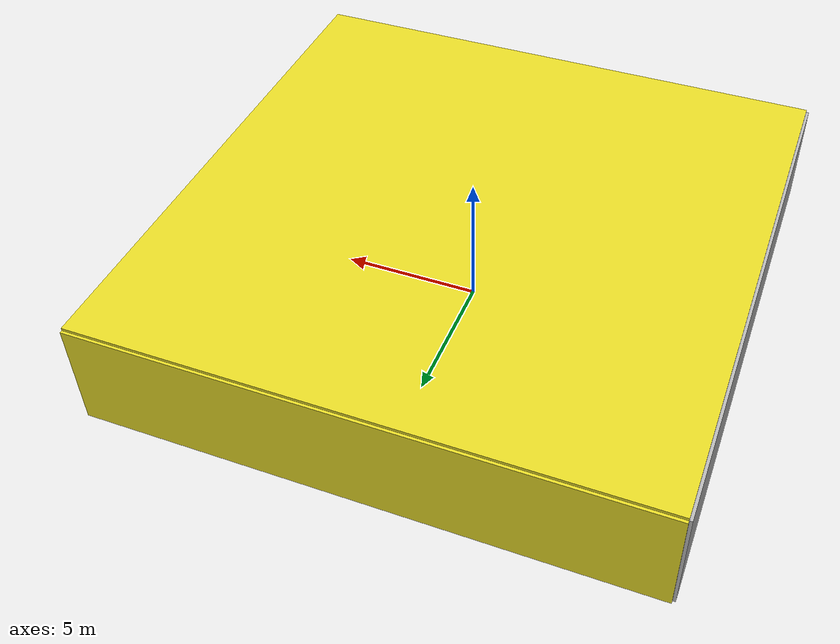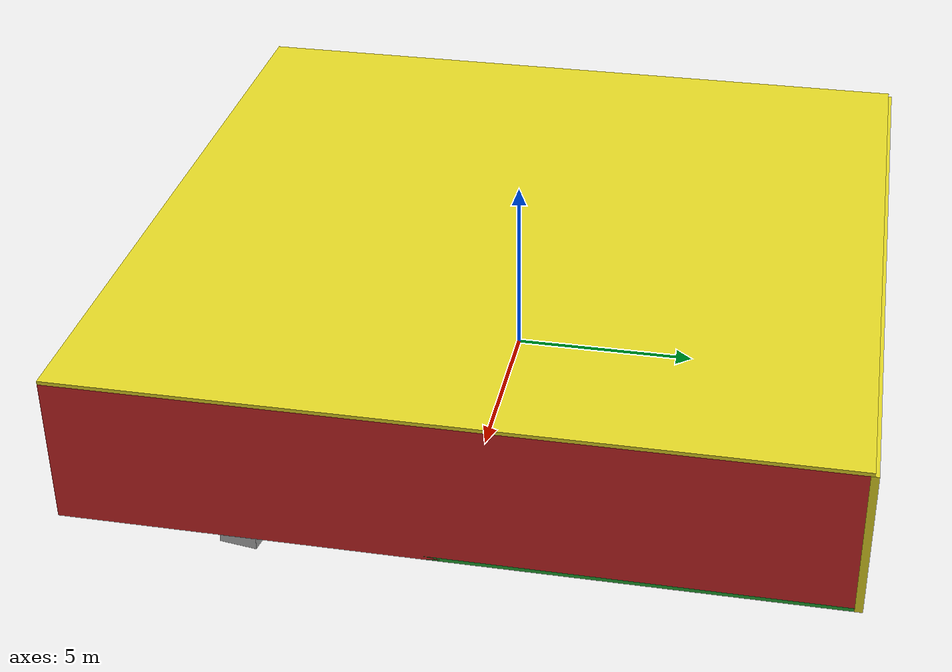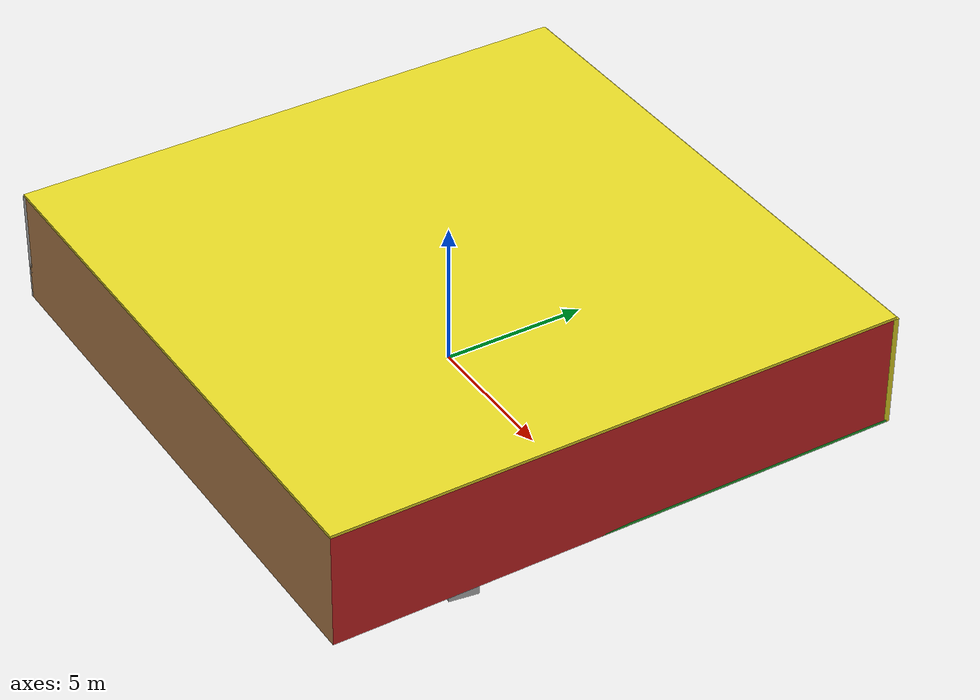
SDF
<sdf version="1.4">
 <world name="default">
  <physics type="ode">
   <max_step_size>0.001</max_step_size>
   <real_time_factor>1</real_time_factor>
   <real_time_update_rate>1000</real_time_update_rate>
   <gravity>0 0 -9.8</gravity>
  </physics>
  <scene><ambient>0.4 0.4 0.4 1</ambient><background>0.7 0.7 0.7 1</background><shadows>1</shadows></scene>
  <model name="Surrounding">
   <static>1</static>
   <link name="Ceiling">
    <collision name="Ceiling_Collision"><geometry><box><size>20 20 0.1</size></box></geometry></collision>
    <visual name="Ceiling_Visual">
     <geometry><box><size>20 20 0.1</size></box></geometry>
     <material>
      <script><uri>file://media/materials/scripts/gazebo.material</uri><name>Gazebo/YellowGlow</name></script>
     </material>
    </visual>
    <pose>0 0 4.05 0 0 0</pose>
   </link>
   <link name="Wall_South">
    <collision name="Wall_South_Collision">
     <geometry><box><size>20 0 4</size></box></geometry>
     <pose>0 0 2 0 -0 0</pose>
    </collision>
    <visual name="Wall_South_Visual">
     <pose>0 0 2 0 -0 0</pose>
     <geometry><box><size>20 0 4</size></box></geometry>
     <material>
      <script><uri>file://media/materials/scripts/gazebo.material</uri><name>Gazebo/Wood</name></script>
     </material>
    </visual>
    <velocity_decay><linear>0</linear><angular>0</angular></velocity_decay>
    <pose>0 -10 0 0 -0 0</pose>
   </link>
   <link name="Wall_East">
    <collision name="Wall_21_Collision">
     <geometry><box><size>20 0 4</size></box></geometry>
     <pose>0 0 2 0 -0 0</pose>
    </collision>
    <visual name="Wall_21_Visual">
     <pose>0 0 2 0 -0 0</pose>
     <geometry><box><size>20 0 4</size></box></geometry>
     <material>
      <script><uri>file://media/materials/scripts/gazebo.material</uri><name>Gazebo/Red</name></script>
     </material>
    </visual>
    <velocity_decay><linear>0</linear><angular>0</angular></velocity_decay>
    <pose>10 0 0 0 -0 1.5708</pose>
   </link>
   <link name="Wall_North">
    <collision name="Wall_22_Collision">
     <geometry><box><size>20 0.2 4</size></box></geometry>
     <pose>0 0 2 0 -0 0</pose>
    </collision>
    <visual name="Wall_22_Visual">
     <pose>0 0 2 0 -0 0</pose>
     <geometry><box><size>20 0.2 4</size></box></geometry>
     <material>
      <script><uri>file://media/materials/scripts/gazebo.material</uri><name>Gazebo/YellowGlow</name></script>
     </material>
    </visual>
    <velocity_decay><linear>0</linear><angular>0</angular></velocity_decay>
    <pose>0 10 0 0 -0 0</pose>
   </link>
   <link name="Wall_West">
    <collision name="Wall_23_Collision">
     <geometry><box><size>20 0.2 4</size></box></geometry>
     <pose>0 0 2 0 -0 0</pose>
    </collision>
    <visual name="Wall_23_Visual">
     <pose>0 0 2 0 -0 0</pose>
     <geometry><box><size>20 0.2 4</size></box></geometry>
     <material>
      <script><uri>file://media/materials/scripts/gazebo.material</uri><name>Gazebo/PioneerBody</name></script>
     </material>
    </visual>
    <velocity_decay><linear>0</linear><angular>0</angular></velocity_decay>
    <pose>-10 0 0 0 0 -1.5708</pose>
   </link>
   <link name="Ground_link">
    <collision name="collision">
     <pose>0 0 .05 0 -0 0</pose>
     <geometry><box><size>20 20 0.1</size></box></geometry>
    </collision>
    <visual name="visual">
     <pose>0 0 .05 0 -0 0</pose>
     <geometry><box><size>20 20 0.1</size></box></geometry>
     <material>
      <script><uri>file://media/materials/scripts/gazebo.material</uri><name>Gazebo/Green</name></script>
     </material>
    </visual>
   </link>
   <static>1</static>
  </model>
  <spherical_coordinates>
   <surface_model>EARTH_WGS84</surface_model>
   <latitude_deg>0</latitude_deg>
   <longitude_deg>0</longitude_deg>
   <elevation>0</elevation>
   <heading_deg>0</heading_deg>
  </spherical_coordinates>
  <light name="lightball_0" type="diffuse">
   <diffuse>0.8 0.8 0.8 1</diffuse>
   <specular>0.2 0.2 0.2 1</specular>
   <attenuation>
    <range>100</range>
    <constant>0.7</constant>
    <linear>0.01</linear>
    <quadratic>0.001</quadratic>
   </attenuation>
   <direction>-0.5 0.1 -0.9</direction>
   <pose>-7.23771780413 -7.87771805541 2.15081691299 0 0 0</pose>
  </light>
  <light name="lightball_1" type="diffuse">
   <diffuse>0.8 0.8 0.8 1</diffuse>
   <specular>0.2 0.2 0.2 1</specular>
   <attenuation>
    <range>100</range>
    <constant>0.7</constant>
    <linear>0.01</linear>
    <quadratic>0.001</quadratic>
   </attenuation>
   <direction>-0.5 0.1 -0.9</direction>
   <pose>8.59971837526 8.83039133029 1.7607259259 0 0 0</pose>
  </light>
  <include><uri>model://cabinet</uri><pose>-0.802114241535 -4.23371220011 0 0 0 0.195568328183</pose></include>
  <include>
   <uri>model://robocup_3Dsim_goal</uri>
   <pose>-1.6491839612 1.18395503235 0 0 0 0.782248523726</pose>
  </include>
  <include>
   <uri>model://textured_shapes</uri>
   <pose>4.7401588344 -3.8090247143 0 0 0 2.2995449737</pose>
  </include>
  <include>
   <uri>model://textured_shapes</uri>
   <pose>3.94749916708 6.95641458496 0 0 0 0.128945601965</pose>
  </include>
  <include>
   <uri>model://textured_shapes</uri>
   <pose>7.73872443081 -5.09757682068 0 0 0 1.42504823748</pose>
  </include>
  <include><uri>model://cabinet</uri><pose>7.0704707559 7.51967956989 0 0 0 1.56803158927</pose></include>
 </world>
</sdf>

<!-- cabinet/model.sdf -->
<sdf version="1.5">
  <model name="cabinet">
    <static>true</static>
    <link name="cabinet_bottom_plate">
      <inertial>
        <pose>0 0 -1 0 0 0</pose>
        <inertia>
          <ixx>2.050000</ixx>
          <ixy>0</ixy>
          <ixz>0</ixz>
          <iyy>2.050000</iyy>
          <iyz>0</iyz>
          <izz>2.050000</izz>
        </inertia>
        <mass>25.000000</mass>
      </inertial>
      <collision name="cabinet_bottom_plate_geom">
        <pose>0 0 0.010000 0 0 0</pose>
        <geometry>
          <box>
            <size>0.450000 0.450000 0.020000</size>
          </box>
        </geometry>
      </collision>
      <visual name="cabinet_bottom_plate_geom_visual">
        <pose>0 0 0.010000 0 0 0</pose>
        <geometry>
          <box>
            <size>0.450000 0.450000 0.020000</size>
          </box>
        </geometry>
        <material>
          <script>
            <uri>model://media/materials/scripts/gazebo.material</uri>
            <name>Gazebo/Wood</name>
          </script>
        </material>
      </visual>
      <collision name="cabinet_bottom_plate_geom_cabinet_back_plate">
        <pose>0.235000 0 0.510000 0 0 0</pose>
        <geometry>
          <box>
            <size>0.020000 0.450000 1.020000</size>
          </box>
        </geometry>
      </collision>
      <visual name="cabinet_bottom_plate_geom_cabinet_back_plate_visual">
        <pose>0.235000 0 0.510000 0 0 0</pose>
        <geometry>
          <box>
            <size>0.020000 0.450000 1.020000</size>
          </box>
        </geometry>
        <material>
          <script>
            <uri>model://media/materials/scripts/gazebo.material</uri>
            <name>Gazebo/Wood</name>
          </script>
        </material>
      </visual>
      <collision name="cabinet_bottom_plate_geom_cabinet_left_plate">
        <pose>0 0.235000 0.510000 0 0 0</pose>
        <geometry>
          <box>
            <size>0.450000 0.020000 1.020000</size>
          </box>
        </geometry>
      </collision>
      <visual name="cabinet_bottom_plate_geom_cabinet_left_plate_visual">
        <pose>0 0.235000 0.510000 0 0 0</pose>
        <geometry>
          <box>
            <size>0.450000 0.020000 1.020000</size>
          </box>
        </geometry>
        <material>
          <script>
            <uri>model://media/materials/scripts/gazebo.material</uri>
            <name>Gazebo/Wood</name>
          </script>
        </material>
      </visual>
      <collision name="cabinet_bottom_plate_geom_cabinet_middle_plate">
        <pose>0 0 0.510000 0 0 0</pose>
        <geometry>
          <box>
            <size>0.450000 0.450000 0.020000</size>
          </box>
        </geometry>
      </collision>
      <visual name="cabinet_bottom_plate_geom_cabinet_middle_plate_visual">
        <pose>0 0 0.510000 0 0 0</pose>
        <geometry>
          <box>
            <size>0.450000 0.450000 0.020000</size>
          </box>
        </geometry>
        <material>
          <script>
            <uri>model://media/materials/scripts/gazebo.material</uri>
            <name>Gazebo/Wood</name>
          </script>
        </material>
      </visual>
      <collision name="cabinet_bottom_plate_geom_cabinet_right_plate">
        <pose>0 -0.235000 0.510000 0 0 0</pose>
        <geometry>
          <box>
            <size>0.450000 0.020000 1.020000</size>
          </box>
        </geometry>
      </collision>
      <visual name="cabinet_bottom_plate_geom_cabinet_right_plate_visual">
        <pose>0 -0.235000 0.510000 0 0 0</pose>
        <geometry>
          <box>
            <size>0.450000 0.020000 1.020000</size>
          </box>
        </geometry>
        <material>
          <script>
            <uri>model://media/materials/scripts/gazebo.material</uri>
            <name>Gazebo/Wood</name>
          </script>
        </material>
      </visual>
      <collision name="cabinet_bottom_plate_geom_cabinet_top_plate">
        <pose>0 0 1.010000 0 0 0</pose>
        <geometry>
          <box>
            <size>0.450000 0.450000 0.020000</size>
          </box>
        </geometry>
      </collision>
      <visual name="cabinet_bottom_plate_geom_cabinet_top_plate_visual">
        <pose>0 0 1.010000 0 0 0</pose>
        <geometry>
          <box>
            <size>0.450000 0.450000 0.020000</size>
          </box>
        </geometry>
        <material>
          <script>
            <uri>model://media/materials/scripts/gazebo.material</uri>
            <name>Gazebo/Wood</name>
          </script>
        </material>
      </visual>
    </link>
  </model>
</sdf>

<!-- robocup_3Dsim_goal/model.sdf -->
<sdf version="1.5">
  <model name="robocup_3d_goal">
    <static>true</static>
    <link name="left_post">
      <pose>0 1.05 0.45 0 0 0</pose>
      <collision name="collision">
        <geometry>
          <cylinder>
            <radius>0.05</radius>
            <length>0.9</length>
          </cylinder>
        </geometry>
      </collision>
      <visual name="visual">
        <geometry>
          <cylinder>
            <radius>0.05</radius>
            <length>0.9</length>
          </cylinder>
        </geometry>
        <material>
          <script>
            <uri>file://media/materials/scripts/gazebo.material</uri>
            <name>Gazebo/ZincYellow</name>
          </script>
        </material>
      </visual>
    </link>
    <link name="left_support_horiz_lower">
      <pose>0.30 1.05 0.01 0 0 0</pose>
      <collision name="collision">
        <geometry>
          <box>
            <size>0.50 0.02 0.02</size>
          </box>
        </geometry>
      </collision>
      <visual name="visual">
        <geometry>
          <box>
            <size>0.50 0.02 0.02</size>
          </box>
        </geometry>
        <material>
          <script>
            <uri>file://media/materials/scripts/gazebo.material</uri>
            <name>Gazebo/White</name>
          </script>
        </material>
      </visual>
    </link>
    <link name="left_support_horiz_upper">
      <pose>0.30 1.05 0.79 0 0 0</pose>
      <collision name="collision">
        <geometry>
          <box>
            <size>0.50 0.02 0.02</size>
          </box>
        </geometry>
      </collision>
      <visual name="visual">
        <geometry>
          <box>
            <size>0.50 0.02 0.02</size>
          </box>
        </geometry>
        <material>
          <script>
            <uri>file://media/materials/scripts/gazebo.material</uri>
            <name>Gazebo/White</name>
          </script>
        </material>
      </visual>
    </link>
    <link name="left_support_vertical">
      <pose>0.56 1.05 0.4 0 1.5708 0</pose>
      <collision name="collision">
        <geometry>
          <box>
            <size>0.80 0.02 0.02</size>
          </box>
        </geometry>
      </collision>
      <visual name="visual">
        <geometry>
          <box>
            <size>0.80 0.02 0.02</size>
          </box>
        </geometry>
        <material>
          <script>
            <uri>file://media/materials/scripts/gazebo.material</uri>
            <name>Gazebo/White</name>
          </script>
        </material>
      </visual>
    </link>
    <link name="right_support_horiz_lower">
      <pose>0.30 -1.05 0.01 0 0 0</pose>
      <collision name="collision">
        <geometry>
          <box>
            <size>0.50 0.02 0.02</size>
          </box>
        </geometry>
      </collision>
      <visual name="visual">
        <geometry>
          <box>
            <size>0.50 0.02 0.02</size>
          </box>
        </geometry>
        <material>
          <script>
            <uri>file://media/materials/scripts/gazebo.material</uri>
            <name>Gazebo/White</name>
          </script>
        </material>
      </visual>
    </link>
    <link name="right_support_horiz_upper">
      <pose>0.30 -1.05 0.79 0 0 0</pose>
      <collision name="collision">
        <geometry>
          <box>
            <size>0.50 0.02 0.02</size>
          </box>
        </geometry>
      </collision>
      <visual name="visual">
        <geometry>
          <box>
            <size>0.50 0.02 0.02</size>
          </box>
        </geometry>
        <material>
          <script>
            <uri>file://media/materials/scripts/gazebo.material</uri>
            <name>Gazebo/White</name>
          </script>
        </material>
      </visual>
    </link>
    <link name="right_support_vertical">
      <pose>0.56 -1.05 0.4 0 1.5708 0</pose>
      <collision name="collision">
        <geometry>
          <box>
            <size>0.80 0.02 0.02</size>
          </box>
        </geometry>
      </collision>
      <visual name="visual">
        <geometry>
          <box>
            <size>0.80 0.02 0.02</size>
          </box>
        </geometry>
        <material>
          <script>
            <uri>file://media/materials/scripts/gazebo.material</uri>
            <name>Gazebo/White</name>
          </script>
        </material>
      </visual>
    </link>
    <link name="center_support_horiz_lower">
      <pose>0.56 0 0.01 0 1.5708 0</pose>
      <collision name="collision">
        <geometry>
          <box>
            <size>0.02 2.08 0.02</size>
          </box>
        </geometry>
      </collision>
      <visual name="visual">
        <geometry>
          <box>
            <size>0.02 2.08 0.02</size>
          </box>
        </geometry>
        <material>
          <script>
            <uri>file://media/materials/scripts/gazebo.material</uri>
            <name>Gazebo/White</name>
          </script>
        </material>
      </visual>
    </link>
    <link name="center_support_horiz_upper">
      <pose>0.56 0 0.79 0 1.5708 0</pose>
      <collision name="collision">
        <geometry>
          <box>
            <size>0.02 2.08 0.02</size>
          </box>
        </geometry>
      </collision>
      <visual name="visual">
        <geometry>
          <box>
            <size>0.02 2.08 0.02</size>
          </box>
        </geometry>
        <material>
          <script>
            <uri>file://media/materials/scripts/gazebo.material</uri>
            <name>Gazebo/White</name>
          </script>
        </material>
      </visual>
    </link>
    <link name="right_post">
      <pose>0 -1.05 0.45 0 0 0</pose>
      <collision name="collision">
        <geometry>
          <cylinder>
            <radius>0.05</radius>
            <length>0.9</length>
          </cylinder>
        </geometry>
      </collision>
      <visual name="visual">
        <geometry>
          <cylinder>
            <radius>0.05</radius>
            <length>0.9</length>
          </cylinder>
        </geometry>
        <material>
          <script>
            <uri>file://media/materials/scripts/gazebo.material</uri>
            <name>Gazebo/ZincYellow</name>
          </script>
        </material>
      </visual>
    </link>
    <link name="crossbar">
      <pose>0 0 0.85 1.57 1.57 0</pose>
      <collision name="collision">
        <geometry>
          <cylinder>
            <radius>0.05</radius>
            <length>2.0</length>
          </cylinder>
        </geometry>
      </collision>
      <visual name="visual">
        <geometry>
          <cylinder>
            <radius>0.05</radius>
            <length>2.0</length>
          </cylinder>
        </geometry>
        <material>
          <script>
            <uri>file://media/materials/scripts/gazebo.material</uri>
            <name>Gazebo/ZincYellow</name>
          </script>
        </material>
      </visual>
    </link>
    <link name="center_net">
      <pose>0.56 0 0.40 0 0 0</pose>
      <collision name="collision">
        <geometry>
          <box>
            <size>0.01 2.1 0.80</size>
          </box>
        </geometry>
      </collision>
      <visual name="visual">
        <geometry>
          <box>
            <size>0.01 2.1 0.80</size>
          </box>
        </geometry>
        <material>
          <script>
            <uri>model://../model_source/models/robocup09_spl_field/materials/scripts/</uri>
            <uri>model://../model_source/models/robocup09_spl_field/materials/textures/</uri>
            <name>RoboCup/Net</name>
          </script>
        </material>
      </visual>
    </link>
    <link name="left_net">
      <pose>0.30 1.05 0.40 0 0 0</pose>
      <collision name="collision">
        <geometry>
          <box>
            <size>0.50 0.01 0.76</size>
          </box>
        </geometry>
      </collision>
      <visual name="visual">
        <geometry>
          <box>
            <size>0.50 0.01 0.76</size>
          </box>
        </geometry>
        <material>
          <script>
            <uri>model://../model_source/models/robocup09_spl_field/materials/scripts/</uri>
            <uri>model://../model_source/models/robocup09_spl_field/materials/textures/</uri>
            <name>RoboCup/Net</name>
          </script>
        </material>
      </visual>
    </link>
    <link name="right_net">
      <pose>0.30 -1.05 0.40 0 0 0</pose>
      <collision name="collision">
        <geometry>
          <box>
            <size>0.50 0.01 0.76</size>
          </box>
        </geometry>
      </collision>
      <visual name="visual">
        <geometry>
          <box>
            <size>0.50 0.01 0.76</size>
          </box>
        </geometry>
        <material>
          <script>
            <uri>model://../model_source/models/robocup09_spl_field/materials/scripts/</uri>
            <uri>model://../model_source/models/robocup09_spl_field/materials/textures/</uri>
            <name>RoboCup/Net</name>
          </script>
        </material>
      </visual>
    </link>
  </model>
</sdf>

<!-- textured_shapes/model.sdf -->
<sdf version="1.6">
  <model name="textured_shapes">
    <pose>0 0 0.5 0 0 0</pose>
    <link name="box">
      <pose>0 -1.5 0 0 0 0</pose>
      <collision name="collision">
        <geometry>
          <box>
            <size>1 1 1</size>
          </box>
        </geometry>
      </collision>
      <visual name="visual">
        <geometry>
          <box>
            <size>1 1 1</size>
          </box>
        </geometry>
        <material>
          <script>
            <uri>model://../model_source/models/textured_shapes/materials/scripts</uri>
            <uri>model://../model_source/models/textured_shapes/materials/textures</uri>
            <name>TexturedShape/Squares</name>
          </script>
        </material>
      </visual>
    </link>
    <link name="sphere">
      <collision name="collision">
        <geometry>
          <sphere>
            <radius>0.5</radius>
          </sphere>
        </geometry>
      </collision>
      <visual name="visual">
        <geometry>
          <sphere>
            <radius>0.5</radius>
          </sphere>
        </geometry>
        <material>
          <script>
            <uri>model://../model_source/models/textured_shapes/materials/scripts</uri>
            <uri>model://../model_source/models/textured_shapes/materials/textures</uri>
            <name>TexturedShape/Squares</name>
          </script>
        </material>
      </visual>
    </link>
    <link name="cylinder">
      <pose>0 1.5 0 0 0 0</pose>
      <collision name="collision">
        <geometry>
          <cylinder>
            <radius>0.5</radius>
            <length>1</length>
          </cylinder>
        </geometry>
      </collision>
      <visual name="visual">
        <geometry>
          <cylinder>
            <radius>0.5</radius>
            <length>1</length>
          </cylinder>
        </geometry>
        <material>
          <script>
            <uri>model://../model_source/models/textured_shapes/materials/scripts</uri>
            <uri>model://../model_source/models/textured_shapes/materials/textures</uri>
            <name>TexturedShape/Squares</name>
          </script>
        </material>
      </visual>
    </link>
  </model>
</sdf>
